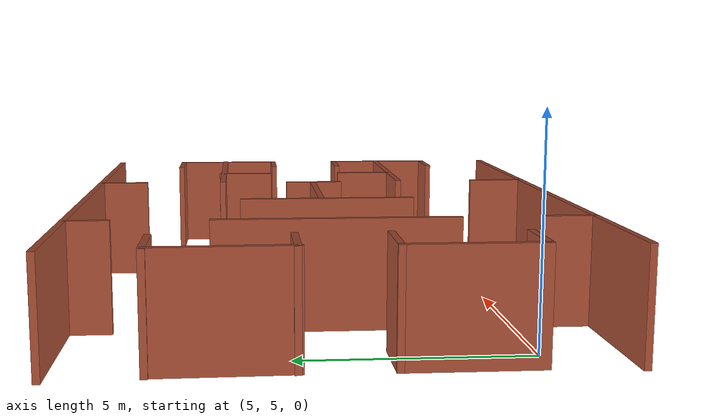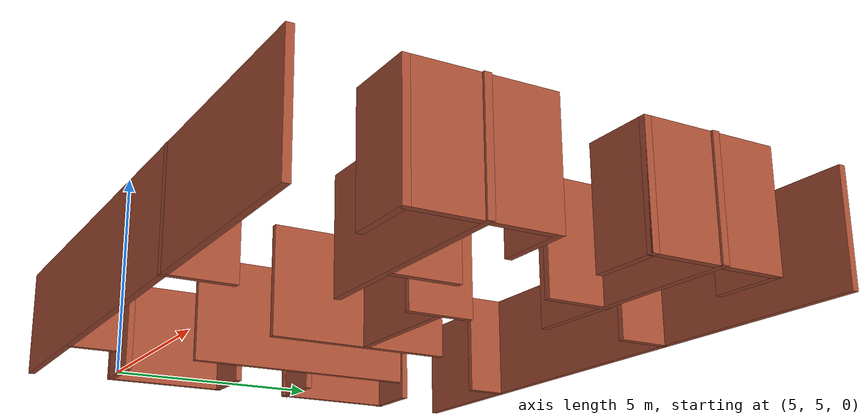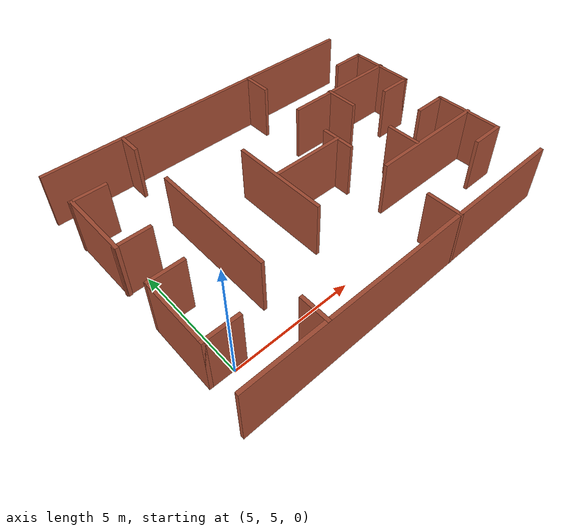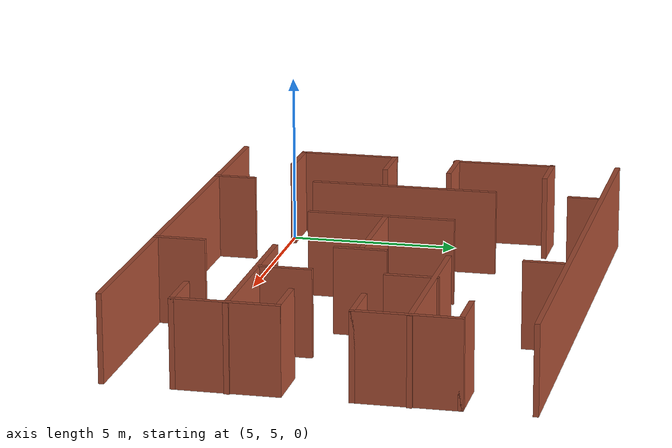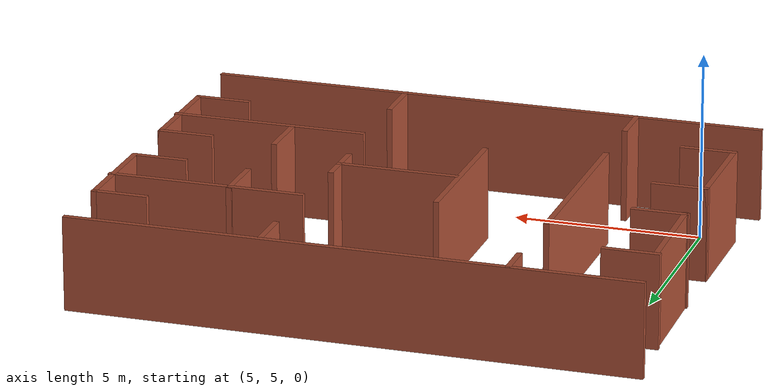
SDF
<?xml version='1.0'?>
<sdf version='1.6'>
  <model name='jianjian_maze'>
    <pose frame=''>11.3747 8.96477 0 0 -0 0</pose>
    <link name='Wall_100'>
      <collision name='Wall_100_Collision'>
        <geometry>
          <box>
            <size>5.25 0.15 2.5</size>
          </box>
        </geometry>
        <pose frame=''>0 0 1.25 0 -0 0</pose>
      </collision>
      <visual name='Wall_100_Visual'>
        <pose frame=''>0 0 1.25 0 -0 0</pose>
        <geometry>
          <box>
            <size>5.25 0.15 2.5</size>
          </box>
        </geometry>
        <material>
          <script>
            <uri>file://media/materials/scripts/gazebo.material</uri>
            <name>Gazebo/Bricks</name>
          </script>
          <ambient>1 1 1 1</ambient>
        </material>
      </visual>
      <pose frame=''>4.90208 2.5027 0 0 -0 3.14159</pose>
    </link>
    <link name='Wall_102'>
      <collision name='Wall_102_Collision'>
        <geometry>
          <box>
            <size>5.25 0.15 2.5</size>
          </box>
        </geometry>
        <pose frame=''>0 0 1.25 0 -0 0</pose>
      </collision>
      <visual name='Wall_102_Visual'>
        <pose frame=''>0 0 1.25 0 -0 0</pose>
        <geometry>
          <box>
            <size>5.25 0.15 2.5</size>
          </box>
        </geometry>
        <material>
          <script>
            <uri>file://media/materials/scripts/gazebo.material</uri>
            <name>Gazebo/Bricks</name>
          </script>
          <ambient>1 1 1 1</ambient>
        </material>
      </visual>
      <pose frame=''>4.90208 -2.3473 0 0 -0 0</pose>
    </link>
    <link name='Wall_104'>
      <collision name='Wall_104_Collision'>
        <geometry>
          <box>
            <size>1.5 0.15 2.5</size>
          </box>
        </geometry>
        <pose frame=''>0 0 1.25 0 -0 0</pose>
      </collision>
      <visual name='Wall_104_Visual'>
        <pose frame=''>0 0 1.25 0 -0 0</pose>
        <geometry>
          <box>
            <size>1.5 0.15 2.5</size>
          </box>
        </geometry>
        <material>
          <script>
            <uri>file://media/materials/scripts/gazebo.material</uri>
            <name>Gazebo/Bricks</name>
          </script>
          <ambient>1 1 1 1</ambient>
        </material>
      </visual>
      <pose frame=''>4.24193 1.87423 0 0 0 -1.5708</pose>
    </link>
    <link name='Wall_106'>
      <collision name='Wall_106_Collision'>
        <geometry>
          <box>
            <size>1.5 0.15 2.5</size>
          </box>
        </geometry>
        <pose frame=''>0 0 1.25 0 -0 0</pose>
      </collision>
      <visual name='Wall_106_Visual'>
        <pose frame=''>0 0 1.25 0 -0 0</pose>
        <geometry>
          <box>
            <size>1.5 0.15 2.5</size>
          </box>
        </geometry>
        <material>
          <script>
            <uri>file://media/materials/scripts/gazebo.material</uri>
            <name>Gazebo/Bricks</name>
          </script>
          <ambient>1 1 1 1</ambient>
        </material>
      </visual>
      <pose frame=''>4.24193 -1.57577 0 0 0 -1.5708</pose>
    </link>
    <link name='Wall_108'>
      <collision name='Wall_108_Collision'>
        <geometry>
          <box>
            <size>1.25 0.15 2.5</size>
          </box>
        </geometry>
        <pose frame=''>0 0 1.25 0 -0 0</pose>
      </collision>
      <visual name='Wall_108_Visual'>
        <pose frame=''>0 0 1.25 0 -0 0</pose>
        <geometry>
          <box>
            <size>1.25 0.15 2.5</size>
          </box>
        </geometry>
        <material>
          <script>
            <uri>file://media/materials/scripts/gazebo.material</uri>
            <name>Gazebo/Bricks</name>
          </script>
          <ambient>1 1 1 1</ambient>
        </material>
      </visual>
      <pose frame=''>2.28793 5.16285 0 0 0 -1.5708</pose>
    </link>
    <link name='Wall_114'>
      <collision name='Wall_114_Collision'>
        <geometry>
          <box>
            <size>1.5 0.15 2.5</size>
          </box>
        </geometry>
        <pose frame=''>0 0 1.25 0 -0 0</pose>
      </collision>
      <visual name='Wall_114_Visual'>
        <pose frame=''>0 0 1.25 0 -0 0</pose>
        <geometry>
          <box>
            <size>1.5 0.15 2.5</size>
          </box>
        </geometry>
        <material>
          <script>
            <uri>file://media/materials/scripts/gazebo.material</uri>
            <name>Gazebo/Bricks</name>
          </script>
          <ambient>1 1 1 1</ambient>
        </material>
      </visual>
      <pose frame=''>2.2414 -5.10436 0 0 0 -1.5708</pose>
    </link>
    <link name='Wall_116'>
      <collision name='Wall_116_Collision'>
        <geometry>
          <box>
            <size>1.5 0.15 2.5</size>
          </box>
        </geometry>
        <pose frame=''>0 0 1.25 0 -0 0</pose>
      </collision>
      <visual name='Wall_116_Visual'>
        <pose frame=''>0 0 1.25 0 -0 0</pose>
        <geometry>
          <box>
            <size>1.5 0.15 2.5</size>
          </box>
        </geometry>
        <material>
          <script>
            <uri>file://media/materials/scripts/gazebo.material</uri>
            <name>Gazebo/Bricks</name>
          </script>
          <ambient>1 1 1 1</ambient>
        </material>
      </visual>
      <pose frame=''>2.14836 0.013269 0 0 0 -1.5708</pose>
    </link>
    <link name='Wall_118'>
      <collision name='Wall_118_Collision'>
        <geometry>
          <box>
            <size>4.25 0.15 2.5</size>
          </box>
        </geometry>
        <pose frame=''>0 0 1.25 0 -0 0</pose>
      </collision>
      <visual name='Wall_118_Visual'>
        <pose frame=''>0 0 1.25 0 -0 0</pose>
        <geometry>
          <box>
            <size>4.25 0.15 2.5</size>
          </box>
        </geometry>
        <material>
          <script>
            <uri>file://media/materials/scripts/gazebo.material</uri>
            <name>Gazebo/Bricks</name>
          </script>
          <ambient>1 1 1 1</ambient>
        </material>
      </visual>
      <pose frame=''>-1.0618 -0.105586 0 0 0 -1.5708</pose>
    </link>
    <link name='Wall_120'>
      <collision name='Wall_120_Collision'>
        <geometry>
          <box>
            <size>3.25 0.15 2.5</size>
          </box>
        </geometry>
        <pose frame=''>0 0 1.25 0 -0 0</pose>
      </collision>
      <visual name='Wall_120_Visual'>
        <pose frame=''>0 0 1.25 0 -0 0</pose>
        <geometry>
          <box>
            <size>3.25 0.15 2.5</size>
          </box>
        </geometry>
        <material>
          <script>
            <uri>file://media/materials/scripts/gazebo.material</uri>
            <name>Gazebo/Bricks</name>
          </script>
          <ambient>1 1 1 1</ambient>
        </material>
      </visual>
      <pose frame=''>0.598354 0.036933 0 0 -0 3.14159</pose>
    </link>
    <link name='Wall_122'>
      <collision name='Wall_122_Collision'>
        <geometry>
          <box>
            <size>1 0.15 2.5</size>
          </box>
        </geometry>
        <pose frame=''>0 0 1.25 0 -0 0</pose>
      </collision>
      <visual name='Wall_122_Visual'>
        <pose frame=''>0 0 1.25 0 -0 0</pose>
        <geometry>
          <box>
            <size>1 0.15 2.5</size>
          </box>
        </geometry>
        <material>
          <script>
            <uri>file://media/materials/scripts/gazebo.material</uri>
            <name>Gazebo/Bricks</name>
          </script>
          <ambient>1 1 1 1</ambient>
        </material>
      </visual>
      <pose frame=''>-4.08585 5.28785 0 0 0 -1.5708</pose>
    </link>
    <link name='Wall_126'>
      <collision name='Wall_126_Collision'>
        <geometry>
          <box>
            <size>1.25 0.15 2.5</size>
          </box>
        </geometry>
        <pose frame=''>0 0 1.25 0 -0 0</pose>
      </collision>
      <visual name='Wall_126_Visual'>
        <pose frame=''>0 0 1.25 0 -0 0</pose>
        <geometry>
          <box>
            <size>1.25 0.15 2.5</size>
          </box>
        </geometry>
        <material>
          <script>
            <uri>file://media/materials/scripts/gazebo.material</uri>
            <name>Gazebo/Bricks</name>
          </script>
          <ambient>1 1 1 1</ambient>
        </material>
      </visual>
      <pose frame=''>-4.13237 -5.21198 0 0 0 -1.5708</pose>
    </link>
    <link name='Wall_128'>
      <collision name='Wall_128_Collision'>
        <geometry>
          <box>
            <size>5.5 0.15 2.5</size>
          </box>
        </geometry>
        <pose frame=''>0 0 1.25 0 -0 0</pose>
      </collision>
      <visual name='Wall_128_Visual'>
        <pose frame=''>0 0 1.25 0 -0 0</pose>
        <geometry>
          <box>
            <size>5.5 0.15 2.5</size>
          </box>
        </geometry>
        <material>
          <script>
            <uri>file://media/materials/scripts/gazebo.material</uri>
            <name>Gazebo/Bricks</name>
          </script>
          <ambient>1 1 1 1</ambient>
        </material>
      </visual>
      <pose frame=''>-4.13237 -0.079251 0 0 0 -1.5708</pose>
    </link>
    <link name='Wall_68'>
      <collision name='Wall_68_Collision'>
        <geometry>
          <box>
            <size>1.5 0.15 2.5</size>
          </box>
        </geometry>
        <pose frame=''>0 0 1.25 0 -0 0</pose>
      </collision>
      <visual name='Wall_68_Visual'>
        <pose frame=''>0 0 1.25 0 -0 0</pose>
        <geometry>
          <box>
            <size>1.5 0.15 2.5</size>
          </box>
        </geometry>
        <material>
          <script>
            <uri>file://media/materials/scripts/gazebo.material</uri>
            <name>Gazebo/Bricks</name>
          </script>
          <ambient>1 1 1 1</ambient>
        </material>
      </visual>
      <pose frame=''>6.72292 3.82936 0 0 -0 3.14159</pose>
    </link>
    <link name='Wall_70'>
      <collision name='Wall_70_Collision'>
        <geometry>
          <box>
            <size>3 0.15 2.5</size>
          </box>
        </geometry>
        <pose frame=''>0 0 1.25 0 -0 0</pose>
      </collision>
      <visual name='Wall_70_Visual'>
        <pose frame=''>0 0 1.25 0 -0 0</pose>
        <geometry>
          <box>
            <size>3 0.15 2.5</size>
          </box>
        </geometry>
        <material>
          <script>
            <uri>file://media/materials/scripts/gazebo.material</uri>
            <name>Gazebo/Bricks</name>
          </script>
          <ambient>1 1 1 1</ambient>
        </material>
      </visual>
      <pose frame=''>7.39792 2.40436 0 0 0 -1.5708</pose>
    </link>
    <link name='Wall_71'>
      <collision name='Wall_71_Collision'>
        <geometry>
          <box>
            <size>1.5 0.15 2.5</size>
          </box>
        </geometry>
        <pose frame=''>0 0 1.25 0 -0 0</pose>
      </collision>
      <visual name='Wall_71_Visual'>
        <pose frame=''>0 0 1.25 0 -0 0</pose>
        <geometry>
          <box>
            <size>1.5 0.15 2.5</size>
          </box>
        </geometry>
        <material>
          <script>
            <uri>file://media/materials/scripts/gazebo.material</uri>
            <name>Gazebo/Bricks</name>
          </script>
          <ambient>1 1 1 1</ambient>
        </material>
      </visual>
      <pose frame=''>6.72292 0.979362 0 0 -0 3.14159</pose>
    </link>
    <link name='Wall_74'>
      <collision name='Wall_74_Collision'>
        <geometry>
          <box>
            <size>1.5 0.15 2.5</size>
          </box>
        </geometry>
        <pose frame=''>0 0 1.25 0 -0 0</pose>
      </collision>
      <visual name='Wall_74_Visual'>
        <pose frame=''>0 0 1.25 0 -0 0</pose>
        <geometry>
          <box>
            <size>1.5 0.15 2.5</size>
          </box>
        </geometry>
        <material>
          <script>
            <uri>file://media/materials/scripts/gazebo.material</uri>
            <name>Gazebo/Bricks</name>
          </script>
          <ambient>1 1 1 1</ambient>
        </material>
      </visual>
      <pose frame=''>6.72292 -0.970638 0 0 -0 3.14159</pose>
    </link>
    <link name='Wall_76'>
      <collision name='Wall_76_Collision'>
        <geometry>
          <box>
            <size>3 0.15 2.5</size>
          </box>
        </geometry>
        <pose frame=''>0 0 1.25 0 -0 0</pose>
      </collision>
      <visual name='Wall_76_Visual'>
        <pose frame=''>0 0 1.25 0 -0 0</pose>
        <geometry>
          <box>
            <size>3 0.15 2.5</size>
          </box>
        </geometry>
        <material>
          <script>
            <uri>file://media/materials/scripts/gazebo.material</uri>
            <name>Gazebo/Bricks</name>
          </script>
          <ambient>1 1 1 1</ambient>
        </material>
      </visual>
      <pose frame=''>7.39792 -2.39564 0 0 0 -1.5708</pose>
    </link>
    <link name='Wall_77'>
      <collision name='Wall_77_Collision'>
        <geometry>
          <box>
            <size>1.5 0.15 2.5</size>
          </box>
        </geometry>
        <pose frame=''>0 0 1.25 0 -0 0</pose>
      </collision>
      <visual name='Wall_77_Visual'>
        <pose frame=''>0 0 1.25 0 -0 0</pose>
        <geometry>
          <box>
            <size>1.5 0.15 2.5</size>
          </box>
        </geometry>
        <material>
          <script>
            <uri>file://media/materials/scripts/gazebo.material</uri>
            <name>Gazebo/Bricks</name>
          </script>
          <ambient>1 1 1 1</ambient>
        </material>
      </visual>
      <pose frame=''>6.72292 -3.82064 0 0 -0 3.14159</pose>
    </link>
    <link name='Wall_80'>
      <collision name='Wall_80_Collision'>
        <geometry>
          <box>
            <size>15 0.15 2.5</size>
          </box>
        </geometry>
        <pose frame=''>0 0 1.25 0 -0 0</pose>
      </collision>
      <visual name='Wall_80_Visual'>
        <pose frame=''>0 0 1.25 0 -0 0</pose>
        <geometry>
          <box>
            <size>15 0.15 2.5</size>
          </box>
        </geometry>
        <material>
          <script>
            <uri>file://media/materials/scripts/gazebo.material</uri>
            <name>Gazebo/Bricks</name>
          </script>
          <ambient>1 1 1 1</ambient>
        </material>
      </visual>
      <pose frame=''>-0.027081 -5.77064 0 0 -0 3.14159</pose>
    </link>
    <link name='Wall_86'>
      <collision name='Wall_86_Collision'>
        <geometry>
          <box>
            <size>3.0469 0.15 2.5</size>
          </box>
        </geometry>
        <pose frame=''>0 0 1.25 0 -0 0</pose>
      </collision>
      <visual name='Wall_86_Visual'>
        <pose frame=''>0 0 1.25 0 -0 0</pose>
        <geometry>
          <box>
            <size>3.0469 0.15 2.5</size>
          </box>
        </geometry>
        <material>
          <script>
            <uri>file://media/materials/scripts/gazebo.material</uri>
            <name>Gazebo/Bricks</name>
          </script>
          <ambient>1 1 1 1</ambient>
        </material>
      </visual>
      <pose frame=''>-7.23836 2.34064 0 0 0 -1.55474</pose>
    </link>
    <link name='Wall_87'>
      <collision name='Wall_87_Collision'>
        <geometry>
          <box>
            <size>1.5 0.15 2.5</size>
          </box>
        </geometry>
        <pose frame=''>0 0 1.25 0 -0 0</pose>
      </collision>
      <visual name='Wall_87_Visual'>
        <pose frame=''>0 0 1.25 0 -0 0</pose>
        <geometry>
          <box>
            <size>1.5 0.15 2.5</size>
          </box>
        </geometry>
        <material>
          <script>
            <uri>file://media/materials/scripts/gazebo.material</uri>
            <name>Gazebo/Bricks</name>
          </script>
          <ambient>1 1 1 1</ambient>
        </material>
      </visual>
      <pose frame=''>-6.58056 0.932838 0 0 -0 0</pose>
    </link>
    <link name='Wall_89'>
      <collision name='Wall_89_Collision'>
        <geometry>
          <box>
            <size>1.5 0.15 2.5</size>
          </box>
        </geometry>
        <pose frame=''>0 0 1.25 0 -0 0</pose>
      </collision>
      <visual name='Wall_89_Visual'>
        <pose frame=''>0 0 1.25 0 -0 0</pose>
        <geometry>
          <box>
            <size>1.5 0.15 2.5</size>
          </box>
        </geometry>
        <material>
          <script>
            <uri>file://media/materials/scripts/gazebo.material</uri>
            <name>Gazebo/Bricks</name>
          </script>
          <ambient>1 1 1 1</ambient>
        </material>
      </visual>
      <pose frame=''>-6.62708 3.82936 0 0 -0 0</pose>
    </link>
    <link name='Wall_9'>
      <collision name='Wall_9_Collision'>
        <geometry>
          <box>
            <size>15 0.15 2.5</size>
          </box>
        </geometry>
        <pose frame=''>0 0 1.25 0 -0 0</pose>
      </collision>
      <visual name='Wall_9_Visual'>
        <pose frame=''>0 0 1.25 0 -0 0</pose>
        <geometry>
          <box>
            <size>15 0.15 2.5</size>
          </box>
        </geometry>
        <material>
          <script>
            <uri>file://media/materials/scripts/gazebo.material</uri>
            <name>Gazebo/Bricks</name>
          </script>
          <ambient>1 1 1 1</ambient>
        </material>
      </visual>
      <pose frame=''>-0.027081 5.77936 0 0 -0 3.14159</pose>
    </link>
    <link name='Wall_93'>
      <collision name='Wall_93_Collision'>
        <geometry>
          <box>
            <size>1.5 0.15 2.5</size>
          </box>
        </geometry>
        <pose frame=''>0 0 1.25 0 -0 0</pose>
      </collision>
      <visual name='Wall_93_Visual'>
        <pose frame=''>0 0 1.25 0 -0 0</pose>
        <geometry>
          <box>
            <size>1.5 0.15 2.5</size>
          </box>
        </geometry>
        <material>
          <script>
            <uri>file://media/materials/scripts/gazebo.material</uri>
            <name>Gazebo/Bricks</name>
          </script>
          <ambient>1 1 1 1</ambient>
        </material>
      </visual>
      <pose frame=''>-6.58056 -1.01716 0 0 -0 0</pose>
    </link>
    <link name='Wall_95'>
      <collision name='Wall_95_Collision'>
        <geometry>
          <box>
            <size>3 0.15 2.5</size>
          </box>
        </geometry>
        <pose frame=''>0 0 1.25 0 -0 0</pose>
      </collision>
      <visual name='Wall_95_Visual'>
        <pose frame=''>0 0 1.25 0 -0 0</pose>
        <geometry>
          <box>
            <size>3 0.15 2.5</size>
          </box>
        </geometry>
        <material>
          <script>
            <uri>file://media/materials/scripts/gazebo.material</uri>
            <name>Gazebo/Bricks</name>
          </script>
          <ambient>1 1 1 1</ambient>
        </material>
      </visual>
      <pose frame=''>-7.25556 -2.44216 0 0 0 -1.5708</pose>
    </link>
    <link name='Wall_96'>
      <collision name='Wall_96_Collision'>
        <geometry>
          <box>
            <size>1.5 0.15 2.5</size>
          </box>
        </geometry>
        <pose frame=''>0 0 1.25 0 -0 0</pose>
      </collision>
      <visual name='Wall_96_Visual'>
        <pose frame=''>0 0 1.25 0 -0 0</pose>
        <geometry>
          <box>
            <size>1.5 0.15 2.5</size>
          </box>
        </geometry>
        <material>
          <script>
            <uri>file://media/materials/scripts/gazebo.material</uri>
            <name>Gazebo/Bricks</name>
          </script>
          <ambient>1 1 1 1</ambient>
        </material>
      </visual>
      <pose frame=''>-6.58056 -3.86716 0 0 -0 0</pose>
    </link>
    <static>1</static>
  </model>
</sdf>
